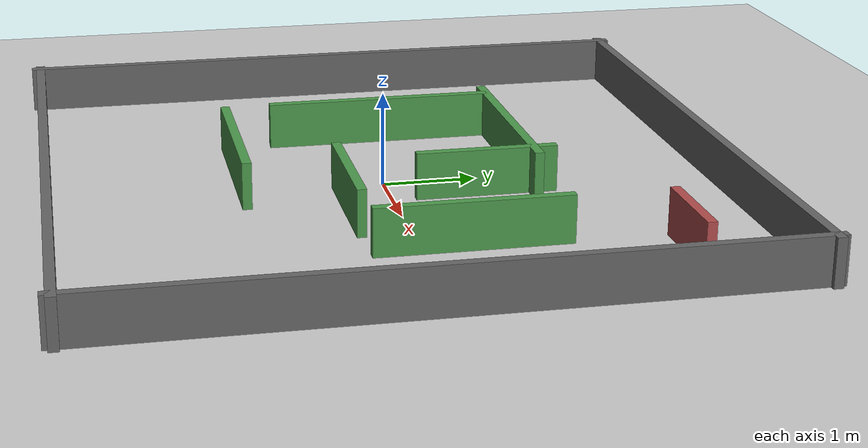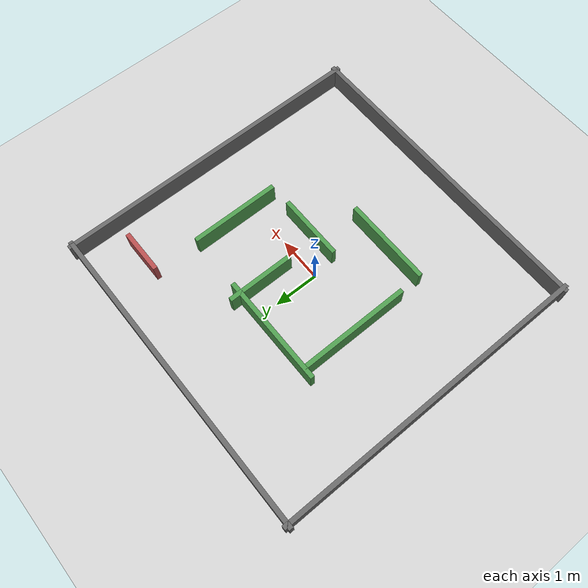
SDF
<?xml version="1.0"?>
<sdf version="1.8">
  <world name="maze_world">

    <!-- ===== Physics ===== -->
    <physics name="1ms" type="ignored">
      <max_step_size>0.001</max_step_size>
      <real_time_factor>1.0</real_time_factor>
    </physics>

    <!-- ===== Plugins ===== -->
    <plugin filename="gz-sim-physics-system"          name="gz::sim::systems::Physics"/>
    <plugin filename="gz-sim-user-commands-system"    name="gz::sim::systems::UserCommands"/>
    <plugin filename="gz-sim-scene-broadcaster-system" name="gz::sim::systems::SceneBroadcaster"/>
    <plugin filename="gz-sim-sensors-system"          name="gz::sim::systems::Sensors">
      <render_engine>ogre2</render_engine>
    </plugin>
    <plugin filename="gz-sim-contact-system"          name="gz::sim::systems::Contact"/>

    <!-- ===== Lighting ===== -->
    <light name="sun" type="directional">
      <cast_shadows>true</cast_shadows>
      <pose>0 0 10 0 0 0</pose>
      <diffuse>0.8 0.8 0.8 1</diffuse>
      <specular>0.2 0.2 0.2 1</specular>
      <direction>-0.5 0.1 -0.9</direction>
    </light>

    <!-- ===== Ground Plane ===== -->
    <model name="ground_plane">
      <static>true</static>
      <link name="link">
        <collision name="collision">
          <geometry><plane><normal>0 0 1</normal><size>20 20</size></plane></geometry>
        </collision>
        <visual name="visual">
          <geometry><plane><normal>0 0 1</normal><size>20 20</size></plane></geometry>
          <material>
            <ambient>0.8 0.8 0.8 1</ambient>
            <diffuse>0.8 0.8 0.8 1</diffuse>
          </material>
        </visual>
      </link>
    </model>

    <!-- ===== WALL MACRO via repeated models ===== -->
    <!--
      Wall convention: pose = center of wall
      Wall height = 0.5m, thickness = 0.1m
    -->

    <!-- OUTER BOUNDARY WALLS -->

    <!-- South outer wall (bottom) -->
    <model name="wall_south">
      <static>true</static>
      <pose>0 -3.5 0.25 0 0 0</pose>
      <link name="link">
        <collision name="collision">
          <geometry><box><size>7.2 0.1 0.5</size></box></geometry>
        </collision>
        <visual name="visual">
          <geometry><box><size>7.2 0.1 0.5</size></box></geometry>
          <material><ambient>0.3 0.3 0.3 1</ambient><diffuse>0.4 0.4 0.4 1</diffuse></material>
        </visual>
      </link>
    </model>

    <!-- North outer wall (top) -->
    <model name="wall_north">
      <static>true</static>
      <pose>0 3.5 0.25 0 0 0</pose>
      <link name="link">
        <collision name="collision">
          <geometry><box><size>7.2 0.1 0.5</size></box></geometry>
        </collision>
        <visual name="visual">
          <geometry><box><size>7.2 0.1 0.5</size></box></geometry>
          <material><ambient>0.3 0.3 0.3 1</ambient><diffuse>0.4 0.4 0.4 1</diffuse></material>
        </visual>
      </link>
    </model>

    <!-- West outer wall (left) -->
    <model name="wall_west">
      <static>true</static>
      <pose>-3.5 0 0.25 0 0 0</pose>
      <link name="link">
        <collision name="collision">
          <geometry><box><size>0.1 7.2 0.5</size></box></geometry>
        </collision>
        <visual name="visual">
          <geometry><box><size>0.1 7.2 0.5</size></box></geometry>
          <material><ambient>0.3 0.3 0.3 1</ambient><diffuse>0.4 0.4 0.4 1</diffuse></material>
        </visual>
      </link>
    </model>

    <!-- East outer wall (right) -->
    <model name="wall_east">
      <static>true</static>
      <pose>3.5 0 0.25 0 0 0</pose>
      <link name="link">
        <collision name="collision">
          <geometry><box><size>0.1 7.2 0.5</size></box></geometry>
        </collision>
        <visual name="visual">
          <geometry><box><size>0.1 7.2 0.5</size></box></geometry>
          <material><ambient>0.3 0.3 0.3 1</ambient><diffuse>0.4 0.4 0.4 1</diffuse></material>
        </visual>
      </link>
    </model>

    <!-- INNER MAZE WALLS -->

    <!-- Horizontal divider 1: splits north corridor -->
    <model name="inner_h1">
      <static>true</static>
      <pose>-0.5 1.5 0.25 0 0 0</pose>
      <link name="link">
        <collision name="collision">
          <geometry><box><size>2.5 0.1 0.5</size></box></geometry>
        </collision>
        <visual name="visual">
          <geometry><box><size>2.5 0.1 0.5</size></box></geometry>
          <material><ambient>0.2 0.5 0.2 1</ambient><diffuse>0.3 0.6 0.3 1</diffuse></material>
        </visual>
      </link>
    </model>

    <!-- Vertical divider 1: left column -->
    <model name="inner_v1">
      <static>true</static>
      <pose>-1.5 0.25 0.25 0 0 0</pose>
      <link name="link">
        <collision name="collision">
          <geometry><box><size>0.1 2.5 0.5</size></box></geometry>
        </collision>
        <visual name="visual">
          <geometry><box><size>0.1 2.5 0.5</size></box></geometry>
          <material><ambient>0.2 0.5 0.2 1</ambient><diffuse>0.3 0.6 0.3 1</diffuse></material>
        </visual>
      </link>
    </model>

    <!-- Horizontal divider 2: middle barrier -->
    <model name="inner_h2">
      <static>true</static>
      <pose>0.75 -0.5 0.25 0 0 0</pose>
      <link name="link">
        <collision name="collision">
          <geometry><box><size>1.5 0.1 0.5</size></box></geometry>
        </collision>
        <visual name="visual">
          <geometry><box><size>1.5 0.1 0.5</size></box></geometry>
          <material><ambient>0.2 0.5 0.2 1</ambient><diffuse>0.3 0.6 0.3 1</diffuse></material>
        </visual>
      </link>
    </model>

    <!-- Vertical divider 2: center column -->
    <model name="inner_v2">
      <static>true</static>
      <pose>0.5 1.0 0.25 0 0 0</pose>
      <link name="link">
        <collision name="collision">
          <geometry><box><size>0.1 1.5 0.5</size></box></geometry>
        </collision>
        <visual name="visual">
          <geometry><box><size>0.1 1.5 0.5</size></box></geometry>
          <material><ambient>0.2 0.5 0.2 1</ambient><diffuse>0.3 0.6 0.3 1</diffuse></material>
        </visual>
      </link>
    </model>

    <!-- Horizontal divider 3: lower barrier -->
    <model name="inner_h3">
      <static>true</static>
      <pose>-0.5 -1.5 0.25 0 0 0</pose>
      <link name="link">
        <collision name="collision">
          <geometry><box><size>2.0 0.1 0.5</size></box></geometry>
        </collision>
        <visual name="visual">
          <geometry><box><size>2.0 0.1 0.5</size></box></geometry>
          <material><ambient>0.2 0.5 0.2 1</ambient><diffuse>0.3 0.6 0.3 1</diffuse></material>
        </visual>
      </link>
    </model>

    <!-- Vertical divider 3: right column -->
    <model name="inner_v3">
      <static>true</static>
      <pose>2.0 0.5 0.25 0 0 0</pose>
      <link name="link">
        <collision name="collision">
          <geometry><box><size>0.1 2.0 0.5</size></box></geometry>
        </collision>
        <visual name="visual">
          <geometry><box><size>0.1 2.0 0.5</size></box></geometry>
          <material><ambient>0.2 0.5 0.2 1</ambient><diffuse>0.3 0.6 0.3 1</diffuse></material>
        </visual>
      </link>
    </model>

    <!-- Short wall near goal to create a pocket -->
    <model name="inner_goal_pocket">
      <static>true</static>
      <pose>2.5 2.5 0.25 0 0 0</pose>
      <link name="link">
        <collision name="collision">
          <geometry><box><size>1.0 0.1 0.5</size></box></geometry>
        </collision>
        <visual name="visual">
          <geometry><box><size>1.0 0.1 0.5</size></box></geometry>
          <material><ambient>0.5 0.2 0.2 1</ambient><diffuse>0.7 0.3 0.3 1</diffuse></material>
        </visual>
      </link>
    </model>

  </world>
</sdf>
